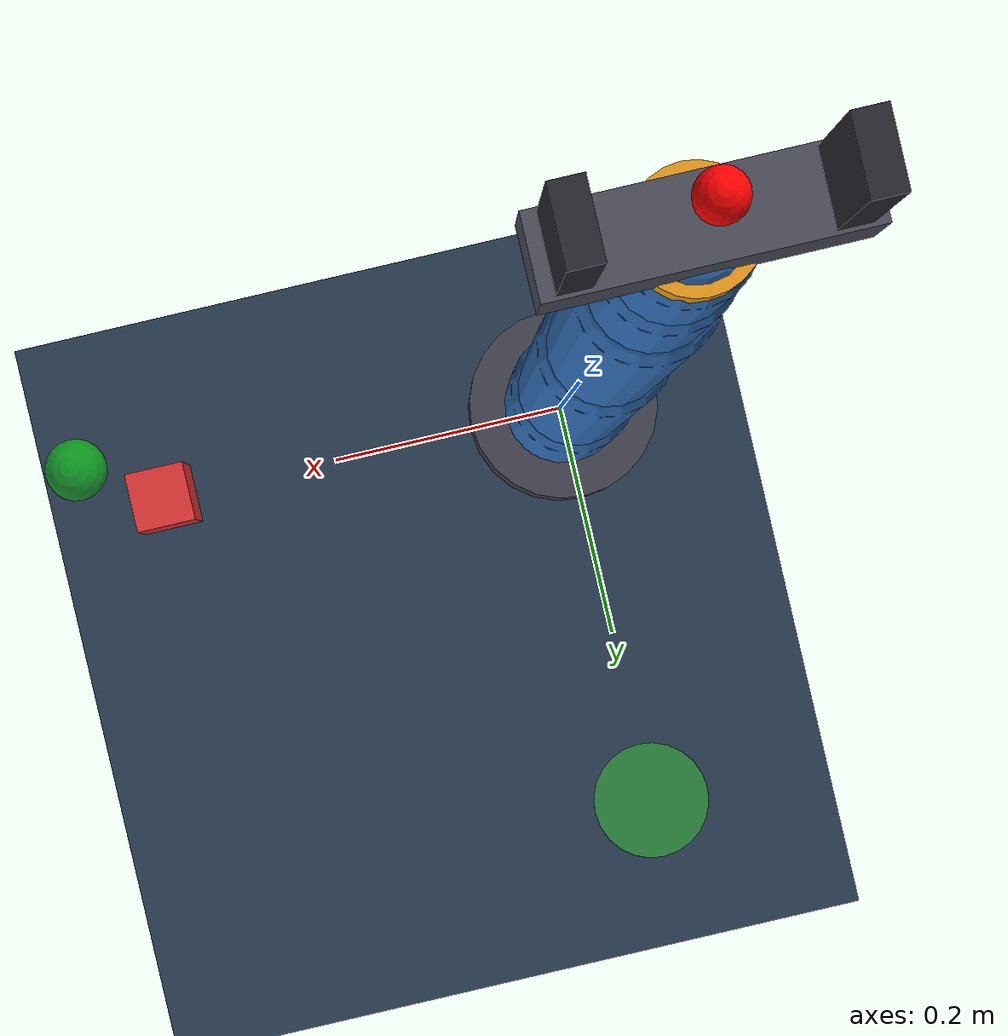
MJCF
<!--  arm6dof.xml                                                            -->
<!--  A 6-DOF (six degrees of freedom) robotic arm with a parallel gripper.  -->
<!--  This file is written in MJCF, MuJoCo's XML modelling format.            -->
<!--  Everything is heavily commented so you can learn how a robot model is   -->
<!--  put together. Read it top-to-bottom like a tutorial.                    -->
<mujoco model="arm6dof">

  <compiler angle="degree" autolimits="true" inertiafromgeom="true"/>

  <option timestep="0.002" integrator="implicitfast" gravity="0 0 -9.81"/>

  <!-- Nice default visual settings for the interactive viewer. -->
  <visual>
    <global offwidth="1280" offheight="720"/>
    <quality shadowsize="4096"/>
    <headlight diffuse="0.6 0.6 0.6" ambient="0.3 0.3 0.3" specular="0 0 0"/>
    <rgba haze="0.15 0.25 0.35 1"/>
  </visual>

  <default>
    <!-- Default look & physical feel for every link geom. -->
    <default class="link">
      <geom type="capsule" rgba="0.2 0.45 0.75 1" density="800"
            friction="1 0.05 0.001" contype="0" conaffinity="0"/>
    </default>

    <!-- Every arm joint: a hinge (revolute) with a little damping so the
         simulation is well-behaved, plus a small amount of friction. -->
    <default class="arm_joint">
      <joint type="hinge" damping="2" armature="0.05" frictionloss="0.2"/>
    </default>

    <!-- Position actuators for the 6 arm joints. kp is the position gain. -->
    <default class="arm_act">
      <position kp="500" kv="60" forcerange="-300 300"/>
    </default>

    <!-- Geoms that make up the two gripper fingers. -->
    <default class="finger">
      <geom type="box" rgba="0.15 0.15 0.18 1" density="500"
            friction="2.0 0.1 0.002"/>
    </default>
  </default>

  <!-- ====================================================================
       ASSETS: reusable textures and materials.
       ==================================================================== -->
  <asset>
    <texture type="skybox" builtin="gradient" rgb1="0.3 0.5 0.7"
             rgb2="0 0 0" width="512" height="3072"/>
    <texture name="grid" type="2d" builtin="checker" rgb1="0.2 0.3 0.4"
             rgb2="0.1 0.15 0.2" width="512" height="512"/>
    <material name="grid" texture="grid" texrepeat="6 6" reflectance="0.2"/>
    <material name="ee_mat" rgba="0.9 0.6 0.1 1"/>
  </asset>

  <worldbody>

    <!-- A light that follows nothing (fixed in the world). -->
    <light name="top" pos="0 0 2.5" dir="0 0 -1" directional="true"/>

    <!-- The ground plane. It is static (no joint => welded to the world). -->
    <geom name="floor" type="plane" size="0 0 0.05" material="grid"/>

    <body name="base" pos="0 0 0">
      <geom type="cylinder" size="0.08 0.04" rgba="0.25 0.25 0.3 1"
            density="2000" contype="0" conaffinity="0"/>

      <body name="link1" gravcomp="1" pos="0 0 0.04">
        <joint name="joint1" class="arm_joint" axis="0 0 1" range="-180 180"/>
        <geom class="link" fromto="0 0 0  0 0 0.10" size="0.05"/>

        <!-- --------------------------------------------------------
             LINK 2 : shoulder lift. JOINT 2 tilts the upper arm.
             -------------------------------------------------------- -->
        <body name="link2" gravcomp="1" pos="0 0 0.10">
          <joint name="joint2" class="arm_joint" axis="0 1 0" range="-100 100"/>
          <geom class="link" fromto="0 0 0  0 0 0.25" size="0.045"/>

          <!-- ------------------------------------------------------
               LINK 3 : elbow. JOINT 3 bends the forearm.
               ------------------------------------------------------ -->
          <body name="link3" gravcomp="1" pos="0 0 0.25">
            <joint name="joint3" class="arm_joint" axis="0 1 0" range="-160 160"/>
            <geom class="link" fromto="0 0 0  0 0 0.22" size="0.04"/>

            <!-- ----------------------------------------------------
                 LINK 4 : wrist roll. JOINT 4 spins the forearm.
                 ---------------------------------------------------- -->
            <body name="link4" gravcomp="1" pos="0 0 0.22">
              <joint name="joint4" class="arm_joint" axis="0 0 1" range="-180 180"/>
              <geom class="link" fromto="0 0 0  0 0 0.08" size="0.035"/>

              <!-- --------------------------------------------------
                   LINK 5 : wrist pitch. JOINT 5 tilts the gripper.
                   -------------------------------------------------- -->
              <body name="link5" gravcomp="1" pos="0 0 0.08">
                <joint name="joint5" class="arm_joint" axis="0 1 0" range="-120 120"/>
                <geom class="link" fromto="0 0 0  0 0 0.06" size="0.032"/>

                <body name="link6" gravcomp="1" pos="0 0 0.06">
                  <joint name="joint6" class="arm_joint" axis="0 0 1" range="-180 180"/>
                  <geom type="cylinder" size="0.03 0.02" material="ee_mat" contype="0" conaffinity="0"/>

                  <site name="ee_site" pos="0 0 0.085" size="0.012"
                        rgba="1 0 0 1"/>

                  <geom type="box" size="0.075 0.02 0.015" pos="0 0 0.03" contype="0" conaffinity="0"
                        rgba="0.3 0.3 0.35 1" density="600"/>

                  <body name="left_finger" pos="0.06 0 0.07">
                    <joint name="left_finger_joint" type="slide" axis="-1 0 0"
                           range="0 0.05" damping="5"/>
                    <geom class="finger" size="0.008 0.018 0.03"/>
                  </body>

                  <body name="right_finger" pos="-0.06 0 0.07">
                    <joint name="right_finger_joint" type="slide" axis="1 0 0"
                           range="0 0.05" damping="5"/>
                    <geom class="finger" size="0.008 0.018 0.03"/>
                  </body>
                </body>
              </body>
            </body>
          </body>
        </body>
      </body>
    </body>

    <body name="target" pos="0.35 0.0 0.4" mocap="true">
      <site name="target_site" type="sphere" size="0.02" rgba="0 1 0 0.5"/>
    </body>

    <body name="cube" pos="0.35 0.0 0.025">
      <freejoint name="cube_free"/>
      <geom name="cube_geom" type="box" size="0.025 0.025 0.025"
            rgba="0.85 0.2 0.2 1" density="300" friction="2 0.1 0.002"/>
    </body>

    <!-- A green pad showing where the cube should be placed. -->
    <geom name="goal_pad" type="cylinder" pos="0.0 0.35 0.001" size="0.05 0.001"
          rgba="0.2 0.8 0.2 0.5" contype="0" conaffinity="0"/>

  </worldbody>

  <actuator>
    <position name="act1" class="arm_act" joint="joint1" ctrlrange="-3.14 3.14"/>
    <position name="act2" class="arm_act" joint="joint2" ctrlrange="-1.74 1.74"/>
    <position name="act3" class="arm_act" joint="joint3" ctrlrange="-2.79 2.79"/>
    <position name="act4" class="arm_act" joint="joint4" ctrlrange="-3.14 3.14"/>
    <position name="act5" class="arm_act" joint="joint5" ctrlrange="-2.09 2.09"/>
    <position name="act6" class="arm_act" joint="joint6" ctrlrange="-3.14 3.14"/>

    <!-- Gripper: position actuators, 0 = open, 0.035 = fully closed. -->
    <position name="left_grip"  joint="left_finger_joint"  kp="200"
              ctrlrange="0 0.05" forcerange="-50 50"/>
    <position name="right_grip" joint="right_finger_joint" kp="200"
              ctrlrange="0 0.05" forcerange="-50 50"/>
  </actuator>

  <sensor>
    <framepos    name="ee_pos"   objtype="site" objname="ee_site"/>
    <framequat   name="ee_quat"  objtype="site" objname="ee_site"/>
    <framelinvel name="ee_vel"   objtype="site" objname="ee_site"/>
  </sensor>

  <keyframe>
    <key name="home"
         qpos="0 -0.6 1.2 0 0.9 0  0 0  0.35 0 0.025 1 0 0 0"
         ctrl="0 -0.6 1.2 0 0.9 0  0 0"/>
  </keyframe>

</mujoco>
